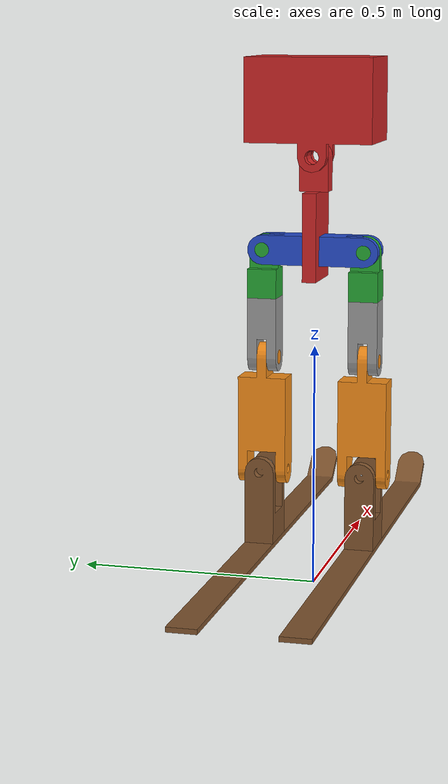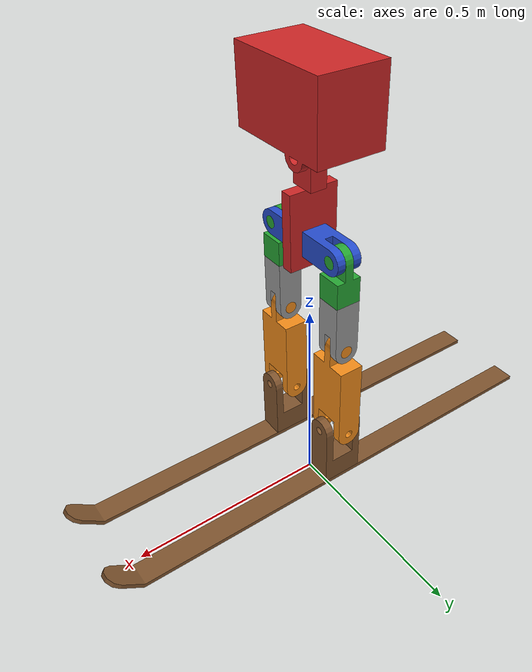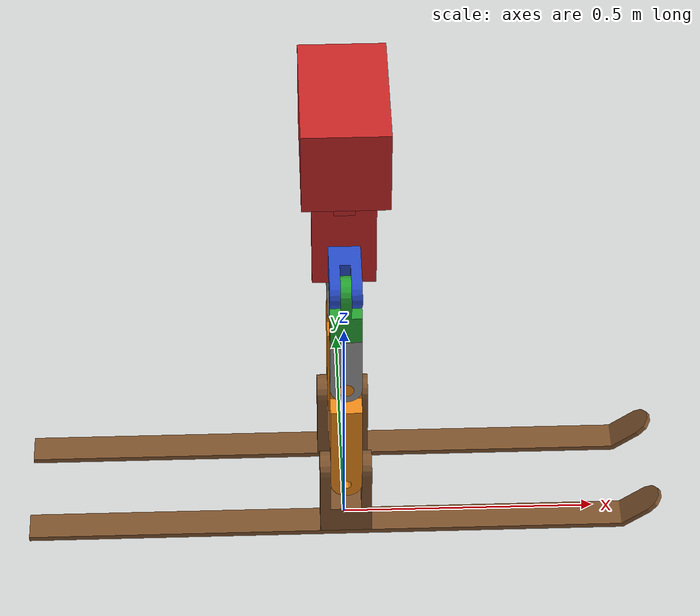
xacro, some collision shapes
<?xml version="1.0"?>
<!-- Revolute-Revolute Manipulator -->
<robot name="ski_simulation_test" xmlns:xacro="http://www.ros.org/wiki/xacro">

  <xacro:property name="pi" value="3.141592654" />
   <!-- Import all Gazebo-customization elements, including Gazebo colors -->
  <xacro:include filename="$(find ski_simulation_pkg)/urdf/ski_gazebo.gazebo" />

  <xacro:include filename="$(find ski_simulation_pkg)/urdf/materials.xacro" />

  <!-- Used for fixing robot -->

  <link name="pelvis">

   <collision>
      <origin xyz="0 0 0.7" rpy="0 0 0"/>
      <geometry>
        <box size="0.01 0.01 0.01" />
      </geometry>
    </collision>

    <visual>
        <origin xyz="0 0 0.7" rpy="0 0 0"/>
        <geometry>
          <mesh filename="package://ski_simulation_pkg/meshes/stl_robot_pelvis_main.stl" scale="0.001 0.001 0.001"/>
        </geometry>
        <material name="red"/>
    </visual>

    <inertial>
      <origin xyz="0 0 0" rpy="0 0 0"/>
      <mass value="1"/>
      <inertia ixx="1.0" ixy="0.0" ixz="0.0" iyy="1.0" iyz="0.0" izz="1.0" />
    </inertial>

  </link>

 <joint name="imu_fixed" type="fixed">
    <parent link="pelvis"/>
    <child link="imu_link"/>
    <origin xyz="0.0 0.0 0.0" rpy="0 0 0"/>
  </joint>

  <link name="imu_link">
    <inertial>
      <origin xyz="0 0 0" rpy="0 0 0"/>
      <mass value="1"/>
      <inertia ixx="1.0" ixy="0.0" ixz="0.0" iyy="1.0" iyz="0.0" izz="1.0" />
    </inertial>
  </link>

<!-- chest -->

<joint name="waist_fixed_joint" type="fixed">
    <parent link="pelvis"/>
    <child link="waist_fixed_link"/>
    <origin xyz="0 0 0.7" rpy="0 0 0"/>
   </joint>

<link name="waist_fixed_link">

     <collision>
      <origin xyz="0 0 0" rpy="0 0 0"/>
      <geometry>
        <box size="0.01 0.01 0.01" />
      </geometry>
    </collision>

    <visual>
        <origin xyz="0 0 0" rpy="0 0 0"/>
        <geometry>
          <mesh filename="package://ski_simulation_pkg/meshes/stl_robot_chest_1.stl" scale="0.001 0.001 0.001"/>
        </geometry>
        <material name="red"/>
    </visual>

    <inertial>
      <origin xyz="0 0 0" rpy="0 0 0"/>
      <mass value="1"/>
      <inertia ixx="1.0" ixy="0.0" ixz="0.0" iyy="1.0" iyz="0.0" izz="1.0" />
    </inertial>
   </link>

<joint name="waist_roll_joint" type="revolute">
    <parent link="waist_fixed_link"/>
    <child link="waist_roll_link"/>
    <origin xyz="0 0 0.19" rpy="0 0 0"/>
    <axis xyz="-1 0 0"/>
    <limit velocity="6.5" effort="1000" lower="${-pi/2}" upper="${pi}" />
    <dynamics damping = "0.7"/>
   </joint>

<transmission name="tran0">
     <type>transmission_interface/SimpleTransmission</type>
     <joint name="waist_roll_joint">
       <hardwareInterface>EffortJointInterface</hardwareInterface>
     </joint>
     <actuator name="waist_roll_motor">
       <hardwareInterface>EffortJointInterface</hardwareInterface>
       <mechanicalReduction>1</mechanicalReduction>
     </actuator>
   </transmission>

<link name="waist_roll_link">
   <collision>
      <origin xyz="0 0 0" rpy="0 0 0"/>
      <geometry>
        <box size="0.01 0.01 0.01" />
      </geometry>
    </collision>

    <visual>
        <origin xyz="0 0 0" rpy="0 0 0"/>
        <geometry>
          <mesh filename="package://ski_simulation_pkg/meshes/stl_robot_chest_2.stl" scale="0.001 0.001 0.001"/>
        </geometry>
        <material name="red"/>
    </visual>

    <inertial>
      <origin xyz="0 0 0" rpy="0 0 0"/>
      <mass value="1"/>
      <inertia ixx="1.0" ixy="0.0" ixz="0.0" iyy="1.0" iyz="0.0" izz="1.0" />
    </inertial>
   </link>

<!-- left leg -->

  <joint name="l_hip_pitch_joint" type="revolute">
    <parent link="pelvis"/>
    <child link="l_hip_pitch_link"/>
    <origin xyz="0 0.105 0.7" rpy="0 0 0"/>
    <axis xyz="0 -1 0"/>
    <limit velocity="6.5" effort="1000" lower="${-pi/2}" upper="${pi/2}" />
    <dynamics damping = "0.7"/>
   </joint>

  <transmission name="l_hip_pitch_tran">
     <type>transmission_interface/SimpleTransmission</type>
     <joint name="l_hip_pitch_joint">
       <hardwareInterface>EffortJointInterface</hardwareInterface>
     </joint>
     <actuator name="l_hip_pitch_motor">
       <hardwareInterface>EffortJointInterface</hardwareInterface>
       <mechanicalReduction>1</mechanicalReduction>
     </actuator>
   </transmission>

  <link name="l_hip_pitch_link">
    <collision>
      <origin xyz="0 0 0" rpy="0 0 0"/>
      <geometry>
        <box size="0.01 0.01 0.01" />
      </geometry>
    </collision>

    <visual>
      <origin xyz="0 0 0" rpy="0 0 0"/>
      <geometry>
        <mesh filename="package://ski_simulation_pkg/meshes/stl_robot_pelvis_left1.stl" scale="0.001 0.001 0.001"/>
      </geometry>
      <material name="blue"/>
    </visual>

    <inertial>
      <origin xyz="0 0 0" rpy="0 0 0"/>
      <mass value="1"/>
      <inertia ixx="1.0" ixy="0.0" ixz="0.0" iyy="1.0" iyz="0.0" izz="1.0" />
    </inertial>

  </link>

   <joint name="l_hip_roll_joint" type="revolute">
    <parent link="l_hip_pitch_link"/>
    <child link="l_hip_roll_link"/>
    <origin xyz="0 0 0" rpy="0 0 0"/>
    <axis xyz="1 0 0"/>
    <limit velocity="6.5" effort="1000" lower="${-pi/2}" upper="${pi}" />
    <dynamics damping = "0.7"/>
   </joint>

 <transmission name="l_hip_roll_tran">
     <type>transmission_interface/SimpleTransmission</type>
     <joint name="l_hip_roll_joint">
       <hardwareInterface>EffortJointInterface</hardwareInterface>
     </joint>
     <actuator name="l_hip_roll_motor">
       <hardwareInterface>EffortJointInterface</hardwareInterface>
       <mechanicalReduction>1</mechanicalReduction>
     </actuator>
   </transmission>

  <link name="l_hip_roll_link">

     <collision>
      <origin xyz="0 0 0" rpy="0 0 0"/>
      <geometry>
        <box size="0.01 0.01 0.01" />
      </geometry>
    </collision>

    <visual>
      <origin xyz="0 0 0" rpy="0 0 0"/>
      <geometry>
        <mesh filename="package://ski_simulation_pkg/meshes/stl_robot_pelvis_left2.stl" scale="0.001 0.001 0.001"/>
      </geometry>
      <material name="green"/>
    </visual>

    <inertial>
      <origin xyz="0 0 0" rpy="0 0 0"/>
      <mass value="1"/>
      <inertia ixx="1.0" ixy="0.0" ixz="0.0" iyy="1.0" iyz="0.0" izz="1.0" />
    </inertial>

  </link>

  <joint name="l_hip_yaw_joint" type="revolute">
    <parent link="l_hip_roll_link"/>
    <child link="l_hip_yaw_link"/>
    <origin xyz="0 0 0" rpy="0 0 0"/>
    <axis xyz="0 0 1"/>
    <limit velocity="6.5" effort="1000" lower="${-pi/2}" upper="${pi/2}" />
    <dynamics damping = "0.7"/>
   </joint>

 <transmission name="l_hip_yaw_tran">
     <type>transmission_interface/SimpleTransmission</type>
     <joint name="l_hip_yaw_joint">
       <hardwareInterface>EffortJointInterface</hardwareInterface>
     </joint>
     <actuator name="l_hip_yaw_motor">
       <hardwareInterface>EffortJointInterface</hardwareInterface>
       <mechanicalReduction>1</mechanicalReduction>
     </actuator>
   </transmission>

  <link name="l_hip_yaw_link">
   <collision>
      <origin xyz="0 0 0" rpy="0 0 0"/>
      <geometry>
        <box size="0.01 0.01 0.01" />
      </geometry>
    </collision>

    <visual>
      <origin xyz="0 0 0" rpy="0 0 0"/>
      <geometry>
        <mesh filename="package://ski_simulation_pkg/meshes/stl_robot_leg_left1.stl" scale="0.001 0.001 0.001"/>
      </geometry>
      <material name="grey"/>
    </visual>

    <inertial>
      <origin xyz="0 0 0" rpy="0 0 0"/>
      <mass value="1"/>
      <inertia ixx="1.0" ixy="0.0" ixz="0.0" iyy="1.0" iyz="0.0" izz="1.0" />
    </inertial>

  </link>

  <joint name="l_knee_pitch_joint" type="revolute">
    <parent link="l_hip_yaw_link"/>
    <child link="l_knee_pitch_link"/>
    <origin xyz="0 0 -0.225" rpy="0 0 0"/>
    <axis xyz="0 -1 0"/>
    <limit velocity="6.5" effort="1000" lower="${-pi}" upper="${pi/2}" />
    <dynamics damping = "0.7"/>
   </joint>

 <transmission name="l_knee_pitch_tran">
     <type>transmission_interface/SimpleTransmission</type>
     <joint name="l_knee_pitch_joint">
       <hardwareInterface>EffortJointInterface</hardwareInterface>
     </joint>
     <actuator name="l_knee_pitch_motor">
       <hardwareInterface>EffortJointInterface</hardwareInterface>
       <mechanicalReduction>1</mechanicalReduction>
     </actuator>
   </transmission>

  <link name="l_knee_pitch_link">

    <collision>
      <origin xyz="0 0 0" rpy="0 0 0"/>
      <geometry>
        <box size="0.01 0.01 0.01" />
      </geometry>
    </collision>

    <visual>
      <origin xyz="0 0 0" rpy="0 0 0"/>
      <geometry>
        <mesh filename="package://ski_simulation_pkg/meshes/stl_robot_leg_left2.stl" scale="0.001 0.001 0.001"/>
      </geometry>
      <material name="orange"/>
    </visual>

    <inertial>
      <origin xyz="0 0 -0.225" rpy="0 0 0"/>
      <mass value="1"/>
      <inertia ixx="1.0" ixy="0.0" ixz="0.0" iyy="1.0" iyz="0.0" izz="1.0" />
    </inertial>

  </link>

  <joint name="l_ankle_pitch_joint" type="revolute">
    <parent link="l_knee_pitch_link"/>
    <child link="l_ankle_pitch_link"/>
    <origin xyz="0 0 -0.235" rpy="0 0 0"/>
    <axis xyz="0 -1 0"/>
    <limit velocity="6.5" effort="1000" lower="${-pi/2}" upper="${pi}" />
    <dynamics damping = "0.7"/>
   </joint>

 <transmission name="l_ankle_pitch_tran">
     <type>transmission_interface/SimpleTransmission</type>
     <joint name="l_ankle_pitch_joint">
       <hardwareInterface>EffortJointInterface</hardwareInterface>
     </joint>
     <actuator name="l_ankle_pitch_motor">
       <hardwareInterface>EffortJointInterface</hardwareInterface>
       <mechanicalReduction>1</mechanicalReduction>
     </actuator>
   </transmission>

  <link name="l_ankle_pitch_link">
    <collision>
      <origin xyz="0 0 0" rpy="0 0 0"/>
      <geometry>
        <box size="0.01 0.01 0.01" />
      </geometry>
    </collision>

    <visual>
      <origin xyz="0 0 0" rpy="0 0 0"/>
      <geometry>
        <mesh filename="package://ski_simulation_pkg/meshes/stl_robot_ank_left1.stl" scale="0.001 0.001 0.001"/>
      </geometry>
      <material name="white"/>
    </visual>

    <inertial>
      <origin xyz="0 0 0" rpy="0 0 0"/>
      <mass value="1"/>
      <inertia ixx="1.0" ixy="0.0" ixz="0.0" iyy="1.0" iyz="0.0" izz="1.0" />
    </inertial>

  </link>

  <joint name="l_ankle_roll_joint" type="revolute">
    <parent link="l_ankle_pitch_link"/>
    <child link="l_ankle_roll_link"/>
    <origin xyz="0 0 0" rpy="0 0 0"/>
    <axis xyz="1 0 0"/>
    <limit velocity="6.5" effort="1000" lower="${-pi/2}" upper="${pi/2}" />
    <dynamics damping = "0.7"/>
   </joint>

 <transmission name="l_ankle_roll_tran">
     <type>transmission_interface/SimpleTransmission</type>
     <joint name="l_ankle_roll_joint">
       <hardwareInterface>EffortJointInterface</hardwareInterface>
     </joint>
     <actuator name="l_ankle_roll_motor">
       <hardwareInterface>EffortJointInterface</hardwareInterface>
       <mechanicalReduction>1</mechanicalReduction>
     </actuator>
   </transmission>

  <link name="l_ankle_roll_link">
    <collision>
      <origin xyz="0 0 0" rpy="0 0 0"/>
      <geometry>
        <box size="0.01 0.01 0.01" />
      </geometry>
    </collision>

    <visual>
      <origin xyz="0 0 0" rpy="0 0 0"/>
      <geometry>
        <mesh filename="package://ski_simulation_pkg/meshes/stl_robot_ank_left2.stl" scale="0.001 0.001 0.001"/>
      </geometry>
      <material name="brown"/>
    </visual>

    <inertial>
      <origin xyz="0 0 0" rpy="0 0 0"/>
      <mass value="1"/>
      <inertia ixx="1.0" ixy="0.0" ixz="0.0" iyy="1.0" iyz="0.0" izz="1.0" />
    </inertial>
  </link>

  <joint name="l_last_joint" type="fixed">
    <parent link="l_ankle_roll_link"/>
    <child link="l_ski_link"/>
    <origin xyz="0 0 -0.15" rpy="0 0 0"/>

  </joint>

<link name="l_ski_link">
    <collision>
      <origin xyz="0 0 -0.005" rpy="0 0 0"/>
      <geometry>
        <box size="1.24 0.065 0.01" />
      </geometry>
    </collision>

    <visual>
      <origin xyz="0 0 0" rpy="0 0 0"/>
      <geometry>
        <mesh filename="package://ski_simulation_pkg/meshes/stl_robot_ski.stl" scale="0.001 0.001 0.001"/>
      </geometry>
      <material name="brown"/>
    </visual>

    <inertial>
      <origin xyz="0 0 0" rpy="0 0 0"/>
      <mass value="1"/>
      <inertia ixx="1.0" ixy="0.0" ixz="0.0" iyy="1.0" iyz="0.0" izz="1.0" />
    </inertial>
  </link>

<!-- right leg -->

<joint name="r_hip_pitch_joint" type="revolute">
    <parent link="pelvis"/>
    <child link="r_hip_pitch_link"/>
    <origin xyz="0 -0.105 0.7" rpy="0 0 0"/>
    <axis xyz="0 1 0"/>
    <limit velocity="6.5" effort="1000" lower="${-pi/2}" upper="${pi}" />
    <dynamics damping = "0.7"/>
   </joint>

   <transmission name="r_hip_pitch_tran">
     <type>transmission_interface/SimpleTransmission</type>
     <joint name="r_hip_pitch_joint">
       <hardwareInterface>EffortJointInterface</hardwareInterface>
     </joint>
     <actuator name="r_hip_pitch_motor">
       <hardwareInterface>EffortJointInterface</hardwareInterface>
       <mechanicalReduction>1</mechanicalReduction>
     </actuator>
  </transmission>

 <link name="r_hip_pitch_link">
    <collision>
      <origin xyz="0 0 0" rpy="0 0 0"/>
      <geometry>
        <box size="0.01 0.01 0.01" />
      </geometry>
    </collision>

    <visual>
      <origin xyz="0 0 0" rpy="0 0 0"/>
      <geometry>
        <mesh filename="package://ski_simulation_pkg/meshes/stl_robot_pelvis_right1.stl" scale="0.001 0.001 0.001"/>
      </geometry>
      <material name="blue"/>
    </visual>

    <inertial>
      <origin xyz="0 0 0" rpy="0 0 0"/>
      <mass value="1"/>
      <inertia ixx="1.0" ixy="0.0" ixz="0.0" iyy="1.0" iyz="0.0" izz="1.0" />
    </inertial>

</link>

  <joint name="r_hip_roll_joint" type="revolute">
    <parent link="r_hip_pitch_link"/>
    <child link="r_hip_roll_link"/>
    <origin xyz="0 0 0" rpy="0 0 0"/>
    <axis xyz="1 0 0"/>
    <limit velocity="6.5" effort="1000" lower="${-pi}" upper="${pi/2}" />
    <dynamics damping = "0.7"/>
   </joint>

 <transmission name="r_hip_roll_tran">
     <type>transmission_interface/SimpleTransmission</type>
     <joint name="r_hip_roll_joint">
       <hardwareInterface>EffortJointInterface</hardwareInterface>
     </joint>
     <actuator name="r_hip_roll_motor">
       <hardwareInterface>EffortJointInterface</hardwareInterface>
       <mechanicalReduction>1</mechanicalReduction>
     </actuator>
   </transmission>

  <link name="r_hip_roll_link">

<collision>
      <origin xyz="0 0 0" rpy="0 0 0"/>
      <geometry>
        <box size="0.01 0.01 0.01" />
      </geometry>
    </collision>

    <visual>
      <origin xyz="0 0 0" rpy="0 0 0"/>
      <geometry>
        <mesh filename="package://ski_simulation_pkg/meshes/stl_robot_pelvis_right2.stl" scale="0.001 0.001 0.001"/>
      </geometry>
      <material name="green"/>
    </visual>

    <inertial>
      <origin xyz="0 0 0" rpy="0 0 0"/>
      <mass value="1"/>
      <inertia ixx="1.0" ixy="0.0" ixz="0.0" iyy="1.0" iyz="0.0" izz="1.0" />
    </inertial>

  </link>

  <joint name="r_hip_yaw_joint" type="revolute">
    <parent link="r_hip_roll_link"/>
    <child link="r_hip_yaw_link"/>
    <origin xyz="0 0 0" rpy="0 0 0"/>
    <axis xyz="0 0 1"/>
    <limit velocity="6.5" effort="1000" lower="${-pi/2}" upper="${pi/2}" />
    <dynamics damping = "0.7"/>
   </joint>

 <transmission name="r_hip_yaw_tran">
     <type>transmission_interface/SimpleTransmission</type>
     <joint name="r_hip_yaw_joint">
       <hardwareInterface>EffortJointInterface</hardwareInterface>
     </joint>
     <actuator name="r_hip_yaw_motor">
       <hardwareInterface>EffortJointInterface</hardwareInterface>
       <mechanicalReduction>1</mechanicalReduction>
     </actuator>
  </transmission>

  <link name="r_hip_yaw_link">
   <collision>
      <origin xyz="0 0 0" rpy="0 0 0"/>
      <geometry>
        <box size="0.01 0.01 0.01" />
      </geometry>
    </collision>

    <visual>
      <origin xyz="0 0 0" rpy="0 0 0"/>
      <geometry>
        <mesh filename="package://ski_simulation_pkg/meshes/stl_robot_leg_right1.stl" scale="0.001 0.001 0.001"/>
      </geometry>
      <material name="grey"/>
    </visual>

    <inertial>
      <origin xyz="0 0 0" rpy="0 0 0"/>
      <mass value="1"/>
      <inertia ixx="1.0" ixy="0.0" ixz="0.0" iyy="1.0" iyz="0.0" izz="1.0" />
    </inertial>

  </link>

  <joint name="r_knee_pitch_joint" type="revolute">
    <parent link="r_hip_yaw_link"/>
    <child link="r_knee_pitch_link"/>
    <origin xyz="0 0 -0.225" rpy="0 0 0"/>
    <axis xyz="0 1 0"/>
    <limit velocity="6.5" effort="1000" lower="${-pi/2}" upper="${pi}" />
    <dynamics damping = "0.7"/>
   </joint>

 <transmission name="r_knee_pitch_tran">
     <type>transmission_interface/SimpleTransmission</type>
     <joint name="r_knee_pitch_joint">
       <hardwareInterface>EffortJointInterface</hardwareInterface>
     </joint>
     <actuator name="r_knee_pitch_motor">
       <hardwareInterface>EffortJointInterface</hardwareInterface>
       <mechanicalReduction>1</mechanicalReduction>
     </actuator>
  </transmission>

  <link name="r_knee_pitch_link">

    <collision>
      <origin xyz="0 0 0" rpy="0 0 0"/>
      <geometry>
        <box size="0.01 0.01 0.01" />
      </geometry>
    </collision>

    <visual>
      <origin xyz="0 0 0" rpy="0 0 0"/>
      <geometry>
        <mesh filename="package://ski_simulation_pkg/meshes/stl_robot_leg_right2.stl" scale="0.001 0.001 0.001"/>
      </geometry>
      <material name="orange"/>
    </visual>

    <inertial>
      <origin xyz="0 0 -0.225" rpy="0 0 0"/>
      <mass value="1"/>
      <inertia ixx="1.0" ixy="0.0" ixz="0.0" iyy="1.0" iyz="0.0" izz="1.0" />
    </inertial>

  </link>

  <joint name="r_ankle_pitch_joint" type="revolute">
    <parent link="r_knee_pitch_link"/>
    <child link="r_ankle_pitch_link"/>
    <origin xyz="0 0 -0.235" rpy="0 0 0"/>
    <axis xyz="0 1 0"/>
    <limit velocity="6.5" effort="1000" lower="${-pi/2}" upper="${pi/2}" />
    <dynamics damping = "0.7"/>
   </joint>

 <transmission name="r_ankle_pitch_tran">
     <type>transmission_interface/SimpleTransmission</type>
     <joint name="r_ankle_pitch_joint">
       <hardwareInterface>EffortJointInterface</hardwareInterface>
     </joint>
     <actuator name="r_ankle_pitch_motor">
       <hardwareInterface>EffortJointInterface</hardwareInterface>
       <mechanicalReduction>1</mechanicalReduction>
     </actuator>
  </transmission>

  <link name="r_ankle_pitch_link">

  <collision>
      <origin xyz="0 0 0" rpy="0 0 0"/>
      <geometry>
        <box size="0.01 0.01 0.01" />
      </geometry>
    </collision>

    <visual>
      <origin xyz="0 0 0" rpy="0 0 0"/>
      <geometry>
        <mesh filename="package://ski_simulation_pkg/meshes/stl_robot_ank_right1.stl" scale="0.001 0.001 0.001"/>
      </geometry>
      <material name="white"/>
    </visual>

    <inertial>
      <origin xyz="0 0 -0.235" rpy="0 0 0"/>
      <mass value="1"/>
      <inertia ixx="1.0" ixy="0.0" ixz="0.0" iyy="1.0" iyz="0.0" izz="1.0" />
    </inertial>

  </link>

  <joint name="r_ankle_roll_joint" type="revolute">
    <parent link="r_ankle_pitch_link"/>
    <child link="r_ankle_roll_link"/>
    <origin xyz="0 0 0" rpy="0 0 0"/>
    <axis xyz="1 0 0"/>
    <limit velocity="6.5" effort="1000" lower="${-pi/2}" upper="${pi/2}" />
    <dynamics damping = "0.7"/>
   </joint>

   <transmission name="r_ankle_roll_tran">
     <type>transmission_interface/SimpleTransmission</type>
     <joint name="r_ankle_roll_joint">
       <hardwareInterface>EffortJointInterface</hardwareInterface>
     </joint>
     <actuator name="r_ankle_roll_motor">
       <hardwareInterface>EffortJointInterface</hardwareInterface>
       <mechanicalReduction>1</mechanicalReduction>
     </actuator>
  </transmission>

  <link name="r_ankle_roll_link">

    <collision>
      <origin xyz="0 0 0" rpy="0 0 0"/>
      <geometry>
        <box size="0.01 0.01 0.01" />
      </geometry>
    </collision>

    <visual>
      <origin xyz="0 0 0" rpy="0 0 0"/>
      <geometry>
        <mesh filename="package://ski_simulation_pkg/meshes/stl_robot_ank_right2.stl" scale="0.001 0.001 0.001"/>
      </geometry>
      <material name="brown"/>
    </visual>

    <inertial>
      <origin xyz="0 0 0" rpy="0 0 0"/>
      <mass value="1"/>
      <inertia ixx="1.0" ixy="0.0" ixz="0.0" iyy="1.0" iyz="0.0" izz="1.0" />
    </inertial>

  </link>

  <joint name="r_last_joint" type="fixed">
    <parent link="r_ankle_roll_link"/>
    <child link="r_ski_link"/>
    <origin xyz="0 0 -0.15" rpy="0 0 0"/>
  </joint>

<link name="r_ski_link">

  <collision>
      <origin xyz="0 0 -0.005" rpy="0 0 0"/>
      <geometry>
        <box size="1.24 0.065 0.01" />
      </geometry>
    </collision>

    <visual>
      <origin xyz="0 0 0" rpy="0 0 0"/>
      <geometry>
        <mesh filename="package://ski_simulation_pkg/meshes/stl_robot_ski.stl" scale="0.001 0.001 0.001"/>
      </geometry>
      <material name="brown"/>
    </visual>

    <inertial>
      <origin xyz="0 0 0" rpy="0 0 0"/>
      <mass value="1"/>
      <inertia ixx="1.0" ixy="0.0" ixz="0.0" iyy="1.0" iyz="0.0" izz="1.0" />
    </inertial>
  </link>

</robot>
